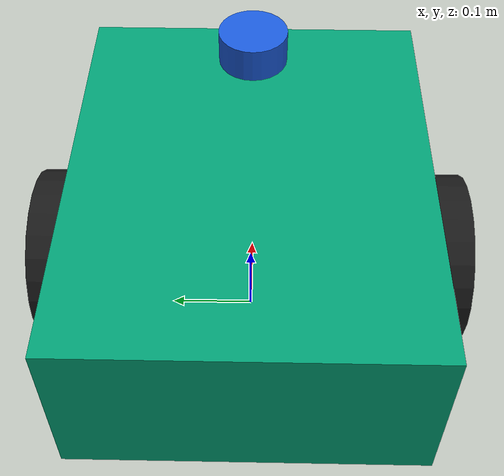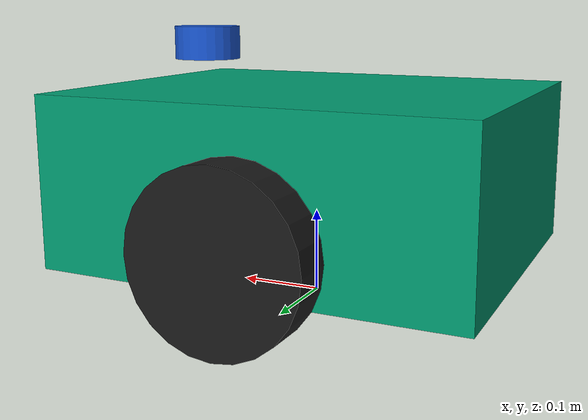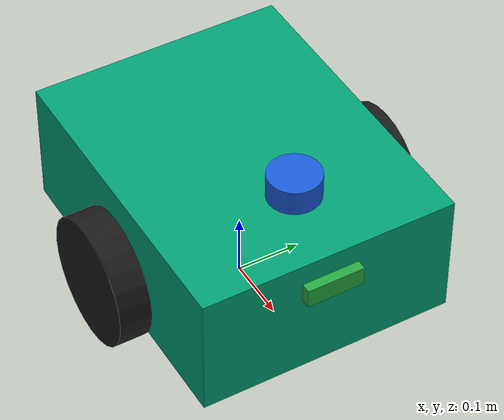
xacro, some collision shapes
<?xml version="1.0"?>
<robot xmlns:xacro="http://www.ros.org/wiki/xacro" name="surveillance_robot">

  <!-- Simulation switches. -->
  <xacro:arg name="sim_mode" default="false"/>
  <xacro:arg name="controllers_file"
             default="$(find surveillance_robot_gazebo)/config/controllers.yaml"/>

  <xacro:property name="sim_mode" value="$(arg sim_mode)"/>

  <!-- Parameters and reusable building blocks (must come first). -->
  <xacro:include filename="$(find surveillance_robot_description)/urdf/dimensions.xacro"/>
  <xacro:include filename="$(find surveillance_robot_description)/urdf/materials.xacro"/>
  <xacro:include filename="$(find surveillance_robot_description)/urdf/inertial_macros.xacro"/>

  <!-- Physical structure. -->
  <xacro:include filename="$(find surveillance_robot_description)/urdf/chassis.xacro"/>
  <xacro:include filename="$(find surveillance_robot_description)/urdf/wheels.xacro"/>

  <!-- Structural sensor mounting frames, including the camera optical frame. -->
  <xacro:include filename="$(find surveillance_robot_description)/urdf/sensors.xacro"/>

  <!-- Simulation-only: ros2_control interfaces + Gazebo plugins/friction. -->
  <xacro:if value="${sim_mode}">
    <xacro:include filename="$(find surveillance_robot_description)/urdf/ros2_control.xacro"/>
    <xacro:include filename="$(find surveillance_robot_description)/urdf/gazebo.xacro"/>

    <xacro:include filename="$(find surveillance_robot_gazebo)/urdf/gazebo_sensors.xacro"/>
    <xacro:arg name="sensors_file"
               default="$(find surveillance_robot_gazebo)/config/sensors.yaml"/>

    <xacro:diff_drive_ros2_control/>
    <xacro:gazebo_sim controllers_file="$(arg controllers_file)"/>
    <xacro:gazebo_sensors config_file="$(arg sensors_file)"/>
  </xacro:if>

</robot>

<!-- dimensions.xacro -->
<robot xmlns:xacro="http://www.ros.org/wiki/xacro">

  <!-- ================= CHASSIS ================= -->
  <xacro:property name="chassis_length" value="0.50"/>   <!-- x, forward  -->
  <xacro:property name="chassis_width"  value="0.40"/>   <!-- y, left     -->
  <xacro:property name="chassis_height" value="0.20"/>   <!-- z, up       -->
  <xacro:property name="chassis_mass"   value="15.0"/>

  <!-- Distance from the ground to the bottom face of the chassis. -->
  <xacro:property name="ground_clearance" value="0.05"/>

  <!-- ================= WHEELS ================= -->
  <xacro:property name="wheel_radius" value="0.10"/>
  <xacro:property name="wheel_width"  value="0.05"/>
  <xacro:property name="wheel_mass"   value="1.0"/>

  <xacro:property name="wheel_separation" value="0.45"/>

  <!--
    Vertical offset from base_link to the wheel axis.
    base_link sits at wheel-axis height, so wheels rotate about base_link z = 0.
  -->
  <xacro:property name="wheel_zoff" value="0.0"/>

  <!-- ================= SENSOR MOUNTS ================= -->
  <!-- Heights are given relative to base_link (wheel-axis height). -->

  <!-- LiDAR: centred, slightly forward, on top of the chassis. -->
  <xacro:property name="laser_x" value="0.15"/>
  <xacro:property name="laser_y" value="0.0"/>
  <xacro:property name="laser_z" value="0.20"/>

  <!-- Camera: front face of the chassis, facing forward (+x). -->
  <xacro:property name="camera_x" value="0.25"/>
  <xacro:property name="camera_y" value="0.0"/>
  <xacro:property name="camera_z" value="0.10"/>

  <!-- IMU: near the chassis centre of mass. -->
  <xacro:property name="imu_x" value="0.0"/>
  <xacro:property name="imu_y" value="0.0"/>
  <xacro:property name="imu_z" value="0.05"/>

  <!-- ================= MATH HELPERS ================= -->
  <xacro:property name="PI"      value="3.14159265358979"/>
  <xacro:property name="PI_2"    value="1.57079632679489"/>

</robot>

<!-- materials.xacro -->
<!--
  Reusable named materials for RViz visualisation. Colours are chosen only for
  clear geometric identification, not for realistic rendering.
-->
<robot xmlns:xacro="http://www.ros.org/wiki/xacro">

  <material name="chassis_grey">
    <color rgba="0.30 0.32 0.35 1.0"/>
  </material>

  <material name="wheel_black">
    <color rgba="0.10 0.10 0.10 1.0"/>
  </material>

  <material name="laser_blue">
    <color rgba="0.10 0.35 0.85 1.0"/>
  </material>

  <material name="camera_green">
    <color rgba="0.15 0.65 0.25 1.0"/>
  </material>

  <material name="imu_orange">
    <color rgba="0.90 0.50 0.10 1.0"/>
  </material>

  <material name="white">
    <color rgba="1.0 1.0 1.0 1.0"/>
  </material>

</robot>

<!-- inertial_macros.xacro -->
<!--
  Reusable inertial macros using physically meaningful formulas for solid
  primitives of uniform density. All produce mass > 0 and a valid, positive
  definite inertia tensor.
-->
<robot xmlns:xacro="http://www.ros.org/wiki/xacro">

  <!--
    Solid box inertia about its geometric centre.
      x, y, z = full side lengths along each axis.
    Ixx = 1/12 m (y^2 + z^2), etc.
  -->
  <xacro:macro name="inertial_box" params="mass x y z *origin">
    <inertial>
      <xacro:insert_block name="origin"/>
      <mass value="${mass}"/>
      <inertia
        ixx="${(1.0/12.0) * mass * (y*y + z*z)}"
        ixy="0.0"
        ixz="0.0"
        iyy="${(1.0/12.0) * mass * (x*x + z*z)}"
        iyz="0.0"
        izz="${(1.0/12.0) * mass * (x*x + y*y)}"/>
    </inertial>
  </xacro:macro>

  <xacro:macro name="inertial_cylinder" params="mass radius length *origin">
    <inertial>
      <xacro:insert_block name="origin"/>
      <mass value="${mass}"/>
      <inertia
        ixx="${(1.0/12.0) * mass * (3.0*radius*radius + length*length)}"
        ixy="0.0"
        ixz="0.0"
        iyy="${(1.0/12.0) * mass * (3.0*radius*radius + length*length)}"
        iyz="0.0"
        izz="${(1.0/2.0) * mass * radius*radius}"/>
    </inertial>
  </xacro:macro>

  <!--
    Solid sphere inertia about its centre.
      Ixx = Iyy = Izz = 2/5 m r^2
  -->
  <xacro:macro name="inertial_sphere" params="mass radius *origin">
    <inertial>
      <xacro:insert_block name="origin"/>
      <mass value="${mass}"/>
      <inertia
        ixx="${(2.0/5.0) * mass * radius*radius}"
        ixy="0.0"
        ixz="0.0"
        iyy="${(2.0/5.0) * mass * radius*radius}"
        iyz="0.0"
        izz="${(2.0/5.0) * mass * radius*radius}"/>
    </inertial>
  </xacro:macro>

</robot>

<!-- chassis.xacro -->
<robot xmlns:xacro="http://www.ros.org/wiki/xacro">

  <!-- Ground-projected 2D navigation reference. -->
  <link name="base_footprint"/>

  <!-- Lift base_link from the ground to the wheel-axis height. -->
  <joint name="base_footprint_joint" type="fixed">
    <parent link="base_footprint"/>
    <child link="base_link"/>
    <origin xyz="0 0 ${wheel_radius}" rpy="0 0 0"/>
  </joint>

  <!-- Kinematic reference frame; chassis geometry is attached below. -->
  <link name="base_link"/>

  <!-- Chassis center relative to base_link. -->
  <xacro:property
    name="chassis_zoff"
    value="${ground_clearance - wheel_radius + chassis_height / 2.0}"/>

  <joint name="chassis_joint" type="fixed">
    <parent link="base_link"/>
    <child link="chassis_link"/>
    <origin xyz="0 0 ${chassis_zoff}" rpy="0 0 0"/>
  </joint>

  <link name="chassis_link">

    <visual>
      <origin xyz="0 0 0.15" rpy="0 0 0"/>
      <geometry>
        <mesh
          filename="package://surveillance_robot_description/meshes/surveillance_robot.glb"
          scale="0.25 0.25 0.25"/>
      </geometry>
    </visual>

    <!-- Preserve the existing physical collision envelope. -->
    <collision>
      <origin xyz="0 0 0" rpy="0 0 0"/>
      <geometry>
        <box size="${chassis_length} ${chassis_width} ${chassis_height}"/>
      </geometry>
    </collision>

    <!-- Preserve the existing mass and inertial model. -->
    <xacro:inertial_box
      mass="${chassis_mass}"
      x="${chassis_length}"
      y="${chassis_width}"
      z="${chassis_height}">
      <origin xyz="0 0 0" rpy="0 0 0"/>
    </xacro:inertial_box>

  </link>

</robot>

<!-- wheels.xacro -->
<robot xmlns:xacro="http://www.ros.org/wiki/xacro">

  <xacro:macro name="wheel" params="prefix reflect">
    <joint name="${prefix}_wheel_joint" type="continuous">
      <parent link="base_link"/>
      <child  link="${prefix}_wheel_link"/>
      <origin xyz="0 ${reflect * wheel_separation/2.0} ${wheel_zoff}"
              rpy="0 0 0"/>
      <axis xyz="0 1 0"/>
    </joint>

    <link name="${prefix}_wheel_link">
      <visual>
        <origin xyz="0 0 0" rpy="${-PI_2} 0 0"/>
        <geometry>
          <cylinder radius="${wheel_radius}" length="${wheel_width}"/>
        </geometry>
        <material name="wheel_black"/>
      </visual>

      <collision>
        <origin xyz="0 0 0" rpy="${-PI_2} 0 0"/>
        <geometry>
          <cylinder radius="${wheel_radius}" length="${wheel_width}"/>
        </geometry>
      </collision>

      <xacro:inertial_cylinder mass="${wheel_mass}"
                               radius="${wheel_radius}" length="${wheel_width}">
        <origin xyz="0 0 0" rpy="${-PI_2} 0 0"/>
      </xacro:inertial_cylinder>
    </link>
  </xacro:macro>

  <xacro:wheel prefix="left"  reflect="1"/>
  <xacro:wheel prefix="right" reflect="-1"/>

</robot>

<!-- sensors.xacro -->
<robot xmlns:xacro="http://www.ros.org/wiki/xacro">

  <!-- ================= LiDAR mount ================= -->
  <joint name="laser_joint" type="fixed">
    <parent link="base_link"/>
    <child  link="laser_link"/>
    <origin xyz="${laser_x} ${laser_y} ${laser_z}" rpy="0 0 0"/>
  </joint>

  <link name="laser_link">
    <visual>
      <origin xyz="0 0 0" rpy="0 0 0"/>
      <geometry>
        <cylinder radius="0.04" length="0.04"/>
      </geometry>
      <material name="laser_blue"/>
    </visual>
    <collision>
      <origin xyz="0 0 0" rpy="0 0 0"/>
      <geometry>
        <cylinder radius="0.04" length="0.04"/>
      </geometry>
    </collision>
    <xacro:inertial_cylinder mass="0.1" radius="0.04" length="0.04">
      <origin xyz="0 0 0" rpy="0 0 0"/>
    </xacro:inertial_cylinder>
  </link>

  <!-- ================= Camera mount ================= -->
  <joint name="camera_joint" type="fixed">
    <parent link="base_link"/>
    <child  link="camera_link"/>
    <origin xyz="${camera_x} ${camera_y} ${camera_z}" rpy="0 0 0"/>
  </joint>

  <link name="camera_link">
    <visual>
      <origin xyz="0 0 0" rpy="0 0 0"/>
      <geometry>
        <box size="0.03 0.09 0.03"/>
      </geometry>
      <material name="camera_green"/>
    </visual>
    <collision>
      <origin xyz="0 0 0" rpy="0 0 0"/>
      <geometry>
        <box size="0.03 0.09 0.03"/>
      </geometry>
    </collision>
    <xacro:inertial_box mass="0.1" x="0.03" y="0.09" z="0.03">
      <origin xyz="0 0 0" rpy="0 0 0"/>
    </xacro:inertial_box>
  </link>

  <!-- The optical origin is co-located with the mount: +z forward, +x right,
       +y down. robot_state_publisher is the only publisher of this fixed TF. -->
  <joint name="camera_optical_joint" type="fixed">
    <parent link="camera_link"/>
    <child link="camera_optical_frame"/>
    <origin xyz="0 0 0" rpy="${-PI_2} 0 ${-PI_2}"/>
  </joint>
  <link name="camera_optical_frame"/>

  <!-- ================= IMU mount ================= -->
  <joint name="imu_joint" type="fixed">
    <parent link="base_link"/>
    <child  link="imu_link"/>
    <origin xyz="${imu_x} ${imu_y} ${imu_z}" rpy="0 0 0"/>
  </joint>

  <link name="imu_link">
    <visual>
      <origin xyz="0 0 0" rpy="0 0 0"/>
      <geometry>
        <box size="0.03 0.03 0.01"/>
      </geometry>
      <material name="imu_orange"/>
    </visual>
    <collision>
      <origin xyz="0 0 0" rpy="0 0 0"/>
      <geometry>
        <box size="0.03 0.03 0.01"/>
      </geometry>
    </collision>
    <xacro:inertial_box mass="0.05" x="0.03" y="0.03" z="0.01">
      <origin xyz="0 0 0" rpy="0 0 0"/>
    </xacro:inertial_box>
  </link>

</robot>
